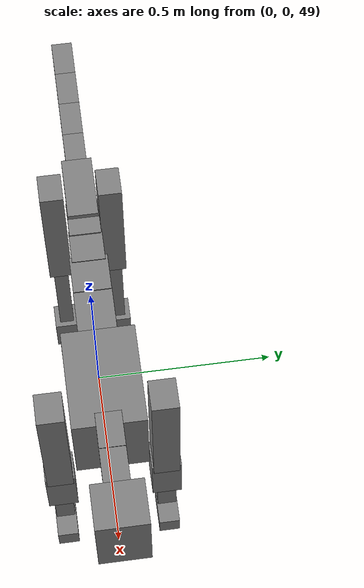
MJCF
<mujoco model="dog">

    <default>
        <joint armature="0.02" stiffness="1" damping="0.2" limited="true"/>
        <geom condim="3" friction="1 0.05 0.05" margin="0.01"/>
        <motor ctrllimited="true" ctrlrange="-1.0 1.0" forcelimited="true" gear="50"/>
    </default>

    <compiler inertiafromgeom="true" angle="radian"/>

    <option timestep="0.016" iterations="50" tolerance="1e-10" solver="Newton" jacobian="dense" cone="pyramidal"/>

    <size nconmax="20000" njmax="60000" nstack="5000000"/>
    <visual>
        <map force="0.1" zfar="30"/>
        <rgba haze="0.15 0.25 0.35 1"/>
        <quality shadowsize="2048"/>
        <global offwidth="800" offheight="800"/>
    </visual>

    <asset>
        <texture type="skybox" builtin="gradient" rgb1="0.3 0.5 0.7" rgb2="0 0 0" width="512" height="512"/>
        <texture name="texplane" type="2d" builtin="checker" rgb1=".2 .3 .4" rgb2=".1 0.15 0.2" width="512" height="512"
                 mark="cross" markrgb=".8 .8 .8"/>
        <texture name="texgeom" type="cube" builtin="flat" mark="cross" width="127" height="1278" rgb1="0.8 0.6 0.4"
                 rgb2="0.8 0.6 0.4" markrgb="1 1 1" random="0.01"/>

        <material name="matplane" reflectance="0.3" texture="texplane" texrepeat="1 1" texuniform="true"/>
        <material name="matgeom" texture="texgeom" texuniform="true" rgba="0.8 0.6 .4 1"/>
    </asset>

    <worldbody>
        <geom name="floor" pos="0 0 0" size="0 0 .25" type="plane" material="matplane" condim="3"/>

        <light directional="false" diffuse=".2 .2 .2" specular="0 0 0" pos="0 0 5" dir="0 0 -1" castshadow="false"/>
        <light mode="targetbodycom" target="torso" directional="false" diffuse=".8 .8 .8" specular="0.3 0.3 0.3"
               pos="0 0 4.0" dir="0 0 -1"/>

        <body name="root" pos="0 0 50">
            <freejoint name="root_1"/>
            <geom type="box" pos="0 0 -0.02" size="0.0774  0.0358  0.063" density="2030"/>

            <body name="spine1" pos="0.054 0 0">
                <joint name="spine1_y" axis="0 1 0" range="0 0.7" limited="true"/>
                <geom type="box" pos="0.02375 0 -0.03" size="0.04375  0.0375  0.05985" density="2030"/>

                <body name="spine2" pos="0.0612 0 0">
                    <joint name="spine2_y" axis="0 1 0" range="-0.15 0.15" limited="true"/>
                    <geom type="box" pos="0.03555  0  -0.04" size="0.04055  0.039  0.06615" density="2030"/>

                    <body name="spine3" pos="0.0730 0 0">
                        <joint name="spine3_y" axis="0 1 0" range="-0.15 0.15" limited="true"/>
                        <geom type="box" pos="0.03555  0  -0.057" size="0.04555  0.0445  0.081" density="2030"/>

                        <body name="spine4" pos="0.0780 0 0">
                            <joint name="spine4_y" axis="0 1 0" range="-0.15 0.15" limited="true"/>
                            <geom type="box" pos="0.05265  0  -0.07" size="0.05265  0.045  0.09135" density="2030"/>

                            <body name="torso" pos="0.1082 0 0">
                                <joint name="torso_y" axis="0 1 0" range="-0.15 0.15" limited="true"/>
                                <geom type="box" pos="0.11925  0  -0.085" size="0.11925  0.085  0.11745"
                                      density="2030"/>

                                <body name="neck1" pos="0.2160  0   0.0180">
                                    <joint name="neck1_y" axis="0 1 0" range="-1.2  -1" limited="true"/>
                                    <geom type="box" pos="0.0423  0  0" size="0.0423  0.03  0.036" density="2325"/>

                                    <body name="neck2" pos="0.0853  0  0">
                                        <joint name="neck2_y" axis="0 1 0" range="0.1  0" limited="true"/>
                                        <geom type="box" pos="0.0423  0  0" size="0.0423  0.03  0.036" density="2325"/>

                                        <body name="head" pos="0.0853  0  0">
                                            <joint name="head_y" axis="0 1 0" range="-0.3  -0.2" limited="true"/>
                                            <geom type="box" pos="0.0531  0  -0.055" size="0.0531  0.06  0.1044"
                                                  density="4030"/>

                                        </body>
                                    </body>
                                </body>

                                <body name="front_shoulder" pos="0.156  0   -0.0480">
                                    <joint name="front_shoulder_y" axis="0 1 0" range="-1 1.5" limited="true"/>
                                    <geom type="box" pos="0 0.13 -0.1575" size="0.0376  0.0322  0.1841" density="1158"/>
                                    <geom type="box" pos="0 -0.13 -0.1575" size="0.0376  0.0322  0.1841"
                                          density="1158"/>

                                    <body name="front_elbow" pos="0  0  -0.3150">
                                        <joint name="front_elbow_y" axis="0 1 0" range="-2 0" limited="true"/>
                                        <geom type="box" pos="0 0.13 -0.0788" size="0.0356  0.0364  0.0788"
                                              density="1081"/>
                                        <geom type="box" pos="0 -0.13 -0.0788" size="0.0356  0.0364  0.0788"
                                              density="1081"/>

                                        <body name="front_wrist" pos="0  0  -0.1576">
                                            <joint name="front_wrist_y" axis="0 1 0" range="-0.2 0" limited="true"/>
                                            <geom type="box" pos="0 0.13 -0.0650" size="0.0212  0.0235  0.0782"
                                                  density="1664"/>
                                            <geom type="box" pos="0 -0.13 -0.0650" size="0.0212  0.0235  0.0782"
                                                  density="1664"/>

                                            <body name="front_finger_end" pos="0  0  -0.1301">
                                                <joint name="front_finger_y" axis="0 1 0" range="-0.4 1"
                                                       limited="true"/>
                                                <geom type="box" pos="0.0259  0.13  -0.0138"
                                                      size="0.0474  0.0259  0.0288" density="1515"/>
                                                <geom type="box" pos="0.0259  -0.13  -0.0138"
                                                      size="0.0474  0.0259  0.0288" density="1515"/>

                                            </body>

                                        </body>
                                    </body>
                                </body>

                            </body>
                        </body>
                    </body>
                </body>
            </body>

            <body name="back_hip" pos="-0.03 0 -0.018">
                <joint name="back_hip_y" axis="0 1 0" range="-1.5 0.3" limited="true"/>
                <geom type="box" pos="0 0.07 -0.1615" size="0.0362  0.0284  0.1843" density="1154"/>
                <geom type="box" pos="0 -0.07 -0.1615" size="0.0362  0.0284  0.1843" density="1154"/>

                <body name="back_knee" pos="0  0  -0.3230">
                    <joint name="back_knee_y" axis="0 1 0" range="0 2.8" limited="true"/>
                    <geom type="box" pos="0 0.07 -0.1597" size="0.0184  0.0182  0.1753" density="1227"/>
                    <geom type="box" pos="0 -0.07 -0.1597" size="0.0184  0.0182  0.1753" density="1227"/>

                    <body name="back_ankle" pos="0  0  -0.3195">
                        <joint name="back_ankle_y" axis="0 1 0" range="-2.2 0" limited="true"/>
                        <geom type="box" pos="0 0.07 -0.0412" size="0.0318  0.0318  0.0525" density="1284"/>
                        <geom type="box" pos="0 -0.07 -0.0412" size="0.0318  0.0318  0.0525" density="1284"/>

                        <body name="back_toe_end" pos="0  0  -0.0824">
                            <joint name="back_toe_y" axis="0 1 0" range="-0.4 1" limited="true"/>
                            <geom type="box" pos="0.0246  0.07  -0.0125" size="0.0450  0.0246  0.0275" density="1515"/>
                            <geom type="box" pos="0.0246  -0.07  -0.0125" size="0.0450  0.0246  0.0275" density="1515"/>

                        </body>
                    </body>
                </body>
            </body>

            <body name="tail1" pos="-0.074 0 -0.006">
                <joint name="tail1_y" axis="0 1 0" range="-0.2 0.2" limited="true"/>
                <geom type="box" pos="-0.0536  0  0" size="0.045  0.025  0.0175" density="1587"/>

                <body name="tail2" pos="-0.09 0 0">
                    <joint name="tail2_y" axis="0 1 0" range="-0.2 0.2" limited="true"/>
                    <geom type="box" pos="-0.0536  0  0" size="0.045  0.025  0.0175" density="1587"/>

                    <body name="tail3" pos="-0.09 0 0">
                        <joint name="tail3_y" axis="0 1 0" range="-0.2 0.2" limited="true"/>
                        <geom type="box" pos="-0.0536  0  0" size="0.045  0.025  0.0175" density="1587"/>

                        <body name="tail4" pos="-0.09 0 0">
                            <joint name="tail4_y" axis="0 1 0" range="-0.2 0.2" limited="true"/>
                            <geom type="box" pos="-0.0536  0  0" size="0.045  0.025  0.0175" density="1587"/>

                        </body>
                    </body>
                </body>
            </body>
        </body>
    </worldbody>

    <actuator>
        <motor joint="spine1_y" forcerange="-150 150     "/>
        <motor joint="spine2_y" forcerange="-150 150     "/>
        <motor joint="spine3_y" forcerange="-150 150     "/>
        <motor joint="spine4_y" forcerange="-150 150     "/>
        <motor joint="torso_y" forcerange="-150 150     "/>
        <motor joint="neck1_y" forcerange="-100 100       "/>
        <motor joint="neck2_y" forcerange="-100 100       "/>
        <motor joint="head_y" forcerange="-150 150       "/>
        <motor joint="front_shoulder_y" forcerange="-184.80 129.60"/>
        <motor joint="front_elbow_y" forcerange="-172.61 192.15"/>
        <motor joint="front_wrist_y" forcerange="-110.52 77.84"/>
        <motor joint="front_finger_y" forcerange="-31.97 65.93"/>
        <motor joint="back_hip_y" forcerange="-345.18 233.10"/>
        <motor joint="back_knee_y" forcerange="-246.65 217.49"/>
        <motor joint="back_angle_y" forcerange="-248.39 159.81"/>
        <motor joint="back_toe_y" forcerange="-54.03 62.54"/>
        <motor joint="tail1_y" forcerange="-50 50     "/>
        <motor joint="tail2_y" forcerange="-50 50     "/>
        <motor joint="tail3_y" forcerange="-50 50     "/>
        <motor joint="tail4_y" forcerange="-50 50     "/>
    </actuator>
</mujoco>
